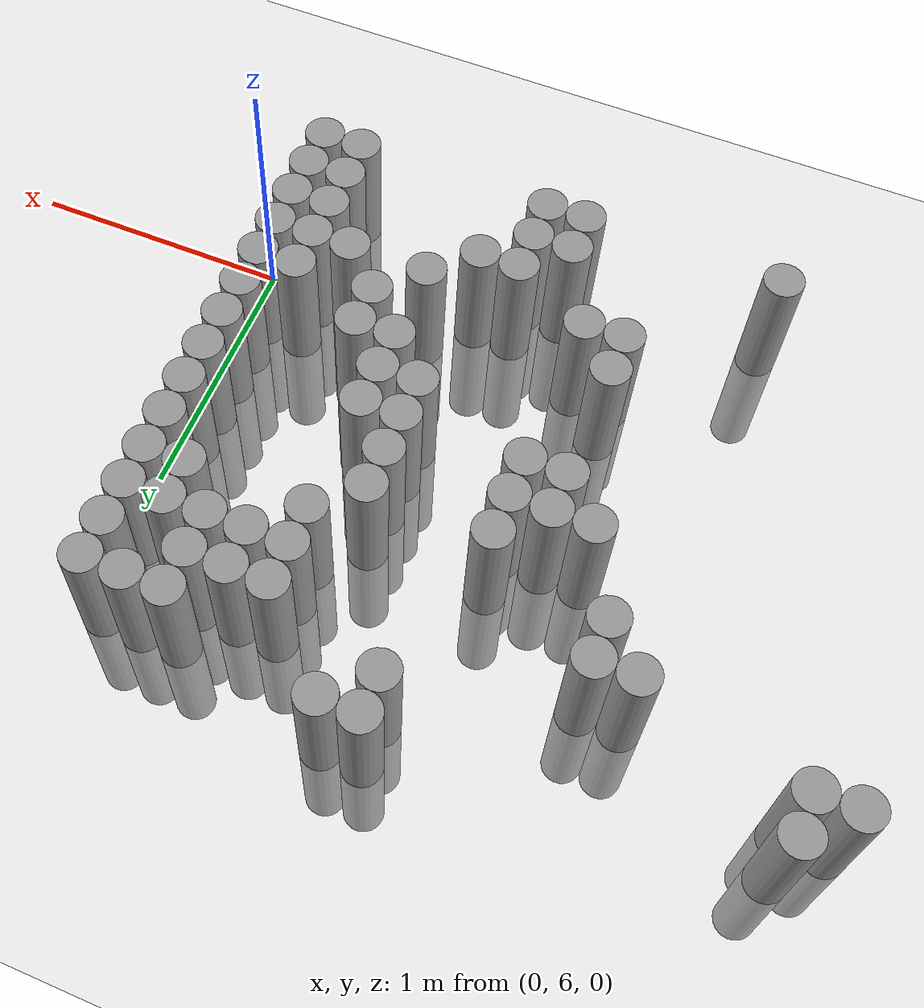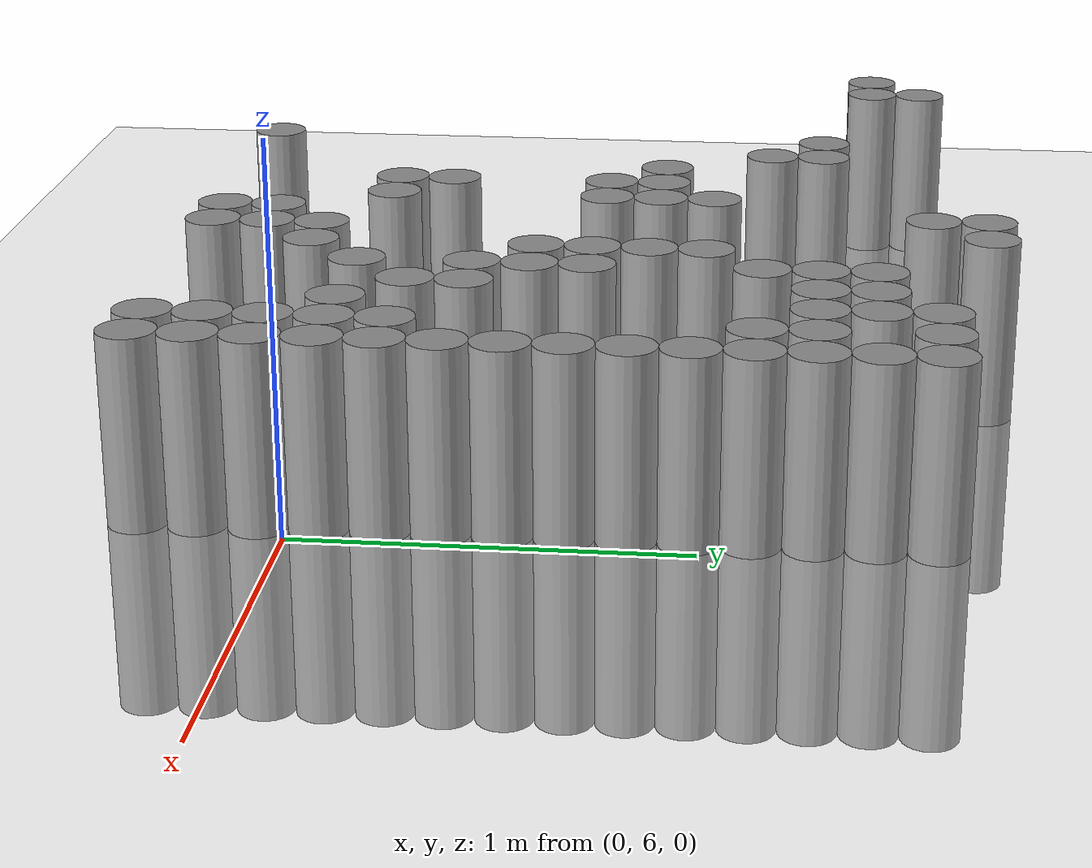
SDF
<sdf version="1.6">
 <world name="default">
  <model name="ground_plane">
   <static>1</static>
   <link name="link">
    <collision name="collision">
     <geometry><plane><normal>0 0 1</normal><size>100 100</size></plane></geometry>
     <surface><friction><ode><mu>100</mu><mu2>50</mu2></ode></friction></surface>
    </collision>
    <visual name="visual">
     <cast_shadows>0</cast_shadows>
     <geometry><plane><normal>0 0 1</normal><size>100 100</size></plane></geometry>
     <material>
      <script><uri>file://media/materials/scripts/gazebo.material</uri><name>Gazebo/Grey</name></script>
     </material>
    </visual>
   </link>
  </model>
  <model name="unit_cylinder_174">
   <pose>-2.625000 7.425000 0.000000 0.000000 0.000000 0.000000</pose>
   <link name="link">
    <inertial>
     <mass>1</mass>
     <inertia><ixx>0.145833</ixx><ixy>0</ixy><ixz>0</ixz><iyy>0.145833</iyy><iyz>0</iyz><izz>0.125</izz></inertia>
    </inertial>
    <collision name="collision">
     <geometry><cylinder><radius>0.075000</radius><length>1</length></cylinder></geometry>
    </collision>
    <visual name="visual">
     <geometry><cylinder><radius>0.075000</radius><length>1</length></cylinder></geometry>
     <material>
      <script><name>Gazebo/Grey</name><uri>file://media/materials/scripts/gazebo.material</uri></script>
     </material>
    </visual>
   </link>
  </model>
  <model name="unit_cylinder_179">
   <pose>-2.475000 7.425000 0.000000 0.000000 0.000000 0.000000</pose>
   <link name="link">
    <inertial>
     <mass>1</mass>
     <inertia><ixx>0.145833</ixx><ixy>0</ixy><ixz>0</ixz><iyy>0.145833</iyy><iyz>0</iyz><izz>0.125</izz></inertia>
    </inertial>
    <collision name="collision">
     <geometry><cylinder><radius>0.075000</radius><length>1</length></cylinder></geometry>
    </collision>
    <visual name="visual">
     <geometry><cylinder><radius>0.075000</radius><length>1</length></cylinder></geometry>
     <material>
      <script><name>Gazebo/Grey</name><uri>file://media/materials/scripts/gazebo.material</uri></script>
     </material>
    </visual>
   </link>
  </model>
  <model name="unit_cylinder_180">
   <pose>-2.475000 7.575000 0.000000 0.000000 0.000000 0.000000</pose>
   <link name="link">
    <inertial>
     <mass>1</mass>
     <inertia><ixx>0.145833</ixx><ixy>0</ixy><ixz>0</ixz><iyy>0.145833</iyy><iyz>0</iyz><izz>0.125</izz></inertia>
    </inertial>
    <collision name="collision">
     <geometry><cylinder><radius>0.075000</radius><length>1</length></cylinder></geometry>
    </collision>
    <visual name="visual">
     <geometry><cylinder><radius>0.075000</radius><length>1</length></cylinder></geometry>
     <material>
      <script><name>Gazebo/Grey</name><uri>file://media/materials/scripts/gazebo.material</uri></script>
     </material>
    </visual>
   </link>
  </model>
  <model name="unit_cylinder_188">
   <pose>-1.875000 5.625000 0.000000 0.000000 0.000000 0.000000</pose>
   <link name="link">
    <inertial>
     <mass>1</mass>
     <inertia><ixx>0.145833</ixx><ixy>0</ixy><ixz>0</ixz><iyy>0.145833</iyy><iyz>0</iyz><izz>0.125</izz></inertia>
    </inertial>
    <collision name="collision">
     <geometry><cylinder><radius>0.075000</radius><length>1</length></cylinder></geometry>
    </collision>
    <visual name="visual">
     <geometry><cylinder><radius>0.075000</radius><length>1</length></cylinder></geometry>
     <material>
      <script><name>Gazebo/Grey</name><uri>file://media/materials/scripts/gazebo.material</uri></script>
     </material>
    </visual>
   </link>
  </model>
  <model name="unit_cylinder_189">
   <pose>-1.875000 7.275000 0.000000 0.000000 0.000000 0.000000</pose>
   <link name="link">
    <inertial>
     <mass>1</mass>
     <inertia><ixx>0.145833</ixx><ixy>0</ixy><ixz>0</ixz><iyy>0.145833</iyy><iyz>0</iyz><izz>0.125</izz></inertia>
    </inertial>
    <collision name="collision">
     <geometry><cylinder><radius>0.075000</radius><length>1</length></cylinder></geometry>
    </collision>
    <visual name="visual">
     <geometry><cylinder><radius>0.075000</radius><length>1</length></cylinder></geometry>
     <material>
      <script><name>Gazebo/Grey</name><uri>file://media/materials/scripts/gazebo.material</uri></script>
     </material>
    </visual>
   </link>
  </model>
  <model name="unit_cylinder_195">
   <pose>-1.725000 7.125000 0.000000 0.000000 0.000000 0.000000</pose>
   <link name="link">
    <inertial>
     <mass>1</mass>
     <inertia><ixx>0.145833</ixx><ixy>0</ixy><ixz>0</ixz><iyy>0.145833</iyy><iyz>0</iyz><izz>0.125</izz></inertia>
    </inertial>
    <collision name="collision">
     <geometry><cylinder><radius>0.075000</radius><length>1</length></cylinder></geometry>
    </collision>
    <visual name="visual">
     <geometry><cylinder><radius>0.075000</radius><length>1</length></cylinder></geometry>
     <material>
      <script><name>Gazebo/Grey</name><uri>file://media/materials/scripts/gazebo.material</uri></script>
     </material>
    </visual>
   </link>
  </model>
  <model name="unit_cylinder_196">
   <pose>-1.725000 7.275000 0.000000 0.000000 0.000000 0.000000</pose>
   <link name="link">
    <inertial>
     <mass>1</mass>
     <inertia><ixx>0.145833</ixx><ixy>0</ixy><ixz>0</ixz><iyy>0.145833</iyy><iyz>0</iyz><izz>0.125</izz></inertia>
    </inertial>
    <collision name="collision">
     <geometry><cylinder><radius>0.075000</radius><length>1</length></cylinder></geometry>
    </collision>
    <visual name="visual">
     <geometry><cylinder><radius>0.075000</radius><length>1</length></cylinder></geometry>
     <material>
      <script><name>Gazebo/Grey</name><uri>file://media/materials/scripts/gazebo.material</uri></script>
     </material>
    </visual>
   </link>
  </model>
  <model name="unit_cylinder_205">
   <pose>-1.575000 6.825000 0.000000 0.000000 0.000000 0.000000</pose>
   <link name="link">
    <inertial>
     <mass>1</mass>
     <inertia><ixx>0.145833</ixx><ixy>0</ixy><ixz>0</ixz><iyy>0.145833</iyy><iyz>0</iyz><izz>0.125</izz></inertia>
    </inertial>
    <collision name="collision">
     <geometry><cylinder><radius>0.075000</radius><length>1</length></cylinder></geometry>
    </collision>
    <visual name="visual">
     <geometry><cylinder><radius>0.075000</radius><length>1</length></cylinder></geometry>
     <material>
      <script><name>Gazebo/Grey</name><uri>file://media/materials/scripts/gazebo.material</uri></script>
     </material>
    </visual>
   </link>
  </model>
  <model name="unit_cylinder_215">
   <pose>-1.425000 6.075000 0.000000 0.000000 0.000000 0.000000</pose>
   <link name="link">
    <inertial>
     <mass>1</mass>
     <inertia><ixx>0.145833</ixx><ixy>0</ixy><ixz>0</ixz><iyy>0.145833</iyy><iyz>0</iyz><izz>0.125</izz></inertia>
    </inertial>
    <collision name="collision">
     <geometry><cylinder><radius>0.075000</radius><length>1</length></cylinder></geometry>
    </collision>
    <visual name="visual">
     <geometry><cylinder><radius>0.075000</radius><length>1</length></cylinder></geometry>
     <material>
      <script><name>Gazebo/Grey</name><uri>file://media/materials/scripts/gazebo.material</uri></script>
     </material>
    </visual>
   </link>
  </model>
  <model name="unit_cylinder_216">
   <pose>-1.425000 6.225000 0.000000 0.000000 0.000000 0.000000</pose>
   <link name="link">
    <inertial>
     <mass>1</mass>
     <inertia><ixx>0.145833</ixx><ixy>0</ixy><ixz>0</ixz><iyy>0.145833</iyy><iyz>0</iyz><izz>0.125</izz></inertia>
    </inertial>
    <collision name="collision">
     <geometry><cylinder><radius>0.075000</radius><length>1</length></cylinder></geometry>
    </collision>
    <visual name="visual">
     <geometry><cylinder><radius>0.075000</radius><length>1</length></cylinder></geometry>
     <material>
      <script><name>Gazebo/Grey</name><uri>file://media/materials/scripts/gazebo.material</uri></script>
     </material>
    </visual>
   </link>
  </model>
  <model name="unit_cylinder_217">
   <pose>-1.425000 6.675000 0.000000 0.000000 0.000000 0.000000</pose>
   <link name="link">
    <inertial>
     <mass>1</mass>
     <inertia><ixx>0.145833</ixx><ixy>0</ixy><ixz>0</ixz><iyy>0.145833</iyy><iyz>0</iyz><izz>0.125</izz></inertia>
    </inertial>
    <collision name="collision">
     <geometry><cylinder><radius>0.075000</radius><length>1</length></cylinder></geometry>
    </collision>
    <visual name="visual">
     <geometry><cylinder><radius>0.075000</radius><length>1</length></cylinder></geometry>
     <material>
      <script><name>Gazebo/Grey</name><uri>file://media/materials/scripts/gazebo.material</uri></script>
     </material>
    </visual>
   </link>
  </model>
  <model name="unit_cylinder_218">
   <pose>-1.425000 6.825000 0.000000 0.000000 0.000000 0.000000</pose>
   <link name="link">
    <inertial>
     <mass>1</mass>
     <inertia><ixx>0.145833</ixx><ixy>0</ixy><ixz>0</ixz><iyy>0.145833</iyy><iyz>0</iyz><izz>0.125</izz></inertia>
    </inertial>
    <collision name="collision">
     <geometry><cylinder><radius>0.075000</radius><length>1</length></cylinder></geometry>
    </collision>
    <visual name="visual">
     <geometry><cylinder><radius>0.075000</radius><length>1</length></cylinder></geometry>
     <material>
      <script><name>Gazebo/Grey</name><uri>file://media/materials/scripts/gazebo.material</uri></script>
     </material>
    </visual>
   </link>
  </model>
  <model name="unit_cylinder_224">
   <pose>-1.275000 6.075000 0.000000 0.000000 0.000000 0.000000</pose>
   <link name="link">
    <inertial>
     <mass>1</mass>
     <inertia><ixx>0.145833</ixx><ixy>0</ixy><ixz>0</ixz><iyy>0.145833</iyy><iyz>0</iyz><izz>0.125</izz></inertia>
    </inertial>
    <collision name="collision">
     <geometry><cylinder><radius>0.075000</radius><length>1</length></cylinder></geometry>
    </collision>
    <visual name="visual">
     <geometry><cylinder><radius>0.075000</radius><length>1</length></cylinder></geometry>
     <material>
      <script><name>Gazebo/Grey</name><uri>file://media/materials/scripts/gazebo.material</uri></script>
     </material>
    </visual>
   </link>
  </model>
  <model name="unit_cylinder_225">
   <pose>-1.275000 6.675000 0.000000 0.000000 0.000000 0.000000</pose>
   <link name="link">
    <inertial>
     <mass>1</mass>
     <inertia><ixx>0.145833</ixx><ixy>0</ixy><ixz>0</ixz><iyy>0.145833</iyy><iyz>0</iyz><izz>0.125</izz></inertia>
    </inertial>
    <collision name="collision">
     <geometry><cylinder><radius>0.075000</radius><length>1</length></cylinder></geometry>
    </collision>
    <visual name="visual">
     <geometry><cylinder><radius>0.075000</radius><length>1</length></cylinder></geometry>
     <material>
      <script><name>Gazebo/Grey</name><uri>file://media/materials/scripts/gazebo.material</uri></script>
     </material>
    </visual>
   </link>
  </model>
  <model name="unit_cylinder_226">
   <pose>-1.275000 6.825000 0.000000 0.000000 0.000000 0.000000</pose>
   <link name="link">
    <inertial>
     <mass>1</mass>
     <inertia><ixx>0.145833</ixx><ixy>0</ixy><ixz>0</ixz><iyy>0.145833</iyy><iyz>0</iyz><izz>0.125</izz></inertia>
    </inertial>
    <collision name="collision">
     <geometry><cylinder><radius>0.075000</radius><length>1</length></cylinder></geometry>
    </collision>
    <visual name="visual">
     <geometry><cylinder><radius>0.075000</radius><length>1</length></cylinder></geometry>
     <material>
      <script><name>Gazebo/Grey</name><uri>file://media/materials/scripts/gazebo.material</uri></script>
     </material>
    </visual>
   </link>
  </model>
  <model name="unit_cylinder_227">
   <pose>-1.275000 6.975000 0.000000 0.000000 0.000000 0.000000</pose>
   <link name="link">
    <inertial>
     <mass>1</mass>
     <inertia><ixx>0.145833</ixx><ixy>0</ixy><ixz>0</ixz><iyy>0.145833</iyy><iyz>0</iyz><izz>0.125</izz></inertia>
    </inertial>
    <collision name="collision">
     <geometry><cylinder><radius>0.075000</radius><length>1</length></cylinder></geometry>
    </collision>
    <visual name="visual">
     <geometry><cylinder><radius>0.075000</radius><length>1</length></cylinder></geometry>
     <material>
      <script><name>Gazebo/Grey</name><uri>file://media/materials/scripts/gazebo.material</uri></script>
     </material>
    </visual>
   </link>
  </model>
  <model name="unit_cylinder_231">
   <pose>-1.125000 5.625000 0.000000 0.000000 0.000000 0.000000</pose>
   <link name="link">
    <inertial>
     <mass>1</mass>
     <inertia><ixx>0.145833</ixx><ixy>0</ixy><ixz>0</ixz><iyy>0.145833</iyy><iyz>0</iyz><izz>0.125</izz></inertia>
    </inertial>
    <collision name="collision">
     <geometry><cylinder><radius>0.075000</radius><length>1</length></cylinder></geometry>
    </collision>
    <visual name="visual">
     <geometry><cylinder><radius>0.075000</radius><length>1</length></cylinder></geometry>
     <material>
      <script><name>Gazebo/Grey</name><uri>file://media/materials/scripts/gazebo.material</uri></script>
     </material>
    </visual>
   </link>
  </model>
  <model name="unit_cylinder_232">
   <pose>-1.125000 5.775000 0.000000 0.000000 0.000000 0.000000</pose>
   <link name="link">
    <inertial>
     <mass>1</mass>
     <inertia><ixx>0.145833</ixx><ixy>0</ixy><ixz>0</ixz><iyy>0.145833</iyy><iyz>0</iyz><izz>0.125</izz></inertia>
    </inertial>
    <collision name="collision">
     <geometry><cylinder><radius>0.075000</radius><length>1</length></cylinder></geometry>
    </collision>
    <visual name="visual">
     <geometry><cylinder><radius>0.075000</radius><length>1</length></cylinder></geometry>
     <material>
      <script><name>Gazebo/Grey</name><uri>file://media/materials/scripts/gazebo.material</uri></script>
     </material>
    </visual>
   </link>
  </model>
  <model name="unit_cylinder_233">
   <pose>-1.125000 7.575000 0.000000 0.000000 0.000000 0.000000</pose>
   <link name="link">
    <inertial>
     <mass>1</mass>
     <inertia><ixx>0.145833</ixx><ixy>0</ixy><ixz>0</ixz><iyy>0.145833</iyy><iyz>0</iyz><izz>0.125</izz></inertia>
    </inertial>
    <collision name="collision">
     <geometry><cylinder><radius>0.075000</radius><length>1</length></cylinder></geometry>
    </collision>
    <visual name="visual">
     <geometry><cylinder><radius>0.075000</radius><length>1</length></cylinder></geometry>
     <material>
      <script><name>Gazebo/Grey</name><uri>file://media/materials/scripts/gazebo.material</uri></script>
     </material>
    </visual>
   </link>
  </model>
  <model name="unit_cylinder_234">
   <pose>-1.125000 7.725000 0.000000 0.000000 0.000000 0.000000</pose>
   <link name="link">
    <inertial>
     <mass>1</mass>
     <inertia><ixx>0.145833</ixx><ixy>0</ixy><ixz>0</ixz><iyy>0.145833</iyy><iyz>0</iyz><izz>0.125</izz></inertia>
    </inertial>
    <collision name="collision">
     <geometry><cylinder><radius>0.075000</radius><length>1</length></cylinder></geometry>
    </collision>
    <visual name="visual">
     <geometry><cylinder><radius>0.075000</radius><length>1</length></cylinder></geometry>
     <material>
      <script><name>Gazebo/Grey</name><uri>file://media/materials/scripts/gazebo.material</uri></script>
     </material>
    </visual>
   </link>
  </model>
  <model name="unit_cylinder_240">
   <pose>-0.975000 5.625000 0.000000 0.000000 0.000000 0.000000</pose>
   <link name="link">
    <inertial>
     <mass>1</mass>
     <inertia><ixx>0.145833</ixx><ixy>0</ixy><ixz>0</ixz><iyy>0.145833</iyy><iyz>0</iyz><izz>0.125</izz></inertia>
    </inertial>
    <collision name="collision">
     <geometry><cylinder><radius>0.075000</radius><length>1</length></cylinder></geometry>
    </collision>
    <visual name="visual">
     <geometry><cylinder><radius>0.075000</radius><length>1</length></cylinder></geometry>
     <material>
      <script><name>Gazebo/Grey</name><uri>file://media/materials/scripts/gazebo.material</uri></script>
     </material>
    </visual>
   </link>
  </model>
  <model name="unit_cylinder_241">
   <pose>-0.975000 5.775000 0.000000 0.000000 0.000000 0.000000</pose>
   <link name="link">
    <inertial>
     <mass>1</mass>
     <inertia><ixx>0.145833</ixx><ixy>0</ixy><ixz>0</ixz><iyy>0.145833</iyy><iyz>0</iyz><izz>0.125</izz></inertia>
    </inertial>
    <collision name="collision">
     <geometry><cylinder><radius>0.075000</radius><length>1</length></cylinder></geometry>
    </collision>
    <visual name="visual">
     <geometry><cylinder><radius>0.075000</radius><length>1</length></cylinder></geometry>
     <material>
      <script><name>Gazebo/Grey</name><uri>file://media/materials/scripts/gazebo.material</uri></script>
     </material>
    </visual>
   </link>
  </model>
  <model name="unit_cylinder_242">
   <pose>-0.975000 5.925000 0.000000 0.000000 0.000000 0.000000</pose>
   <link name="link">
    <inertial>
     <mass>1</mass>
     <inertia><ixx>0.145833</ixx><ixy>0</ixy><ixz>0</ixz><iyy>0.145833</iyy><iyz>0</iyz><izz>0.125</izz></inertia>
    </inertial>
    <collision name="collision">
     <geometry><cylinder><radius>0.075000</radius><length>1</length></cylinder></geometry>
    </collision>
    <visual name="visual">
     <geometry><cylinder><radius>0.075000</radius><length>1</length></cylinder></geometry>
     <material>
      <script><name>Gazebo/Grey</name><uri>file://media/materials/scripts/gazebo.material</uri></script>
     </material>
    </visual>
   </link>
  </model>
  <model name="unit_cylinder_243">
   <pose>-0.975000 7.725000 0.000000 0.000000 0.000000 0.000000</pose>
   <link name="link">
    <inertial>
     <mass>1</mass>
     <inertia><ixx>0.145833</ixx><ixy>0</ixy><ixz>0</ixz><iyy>0.145833</iyy><iyz>0</iyz><izz>0.125</izz></inertia>
    </inertial>
    <collision name="collision">
     <geometry><cylinder><radius>0.075000</radius><length>1</length></cylinder></geometry>
    </collision>
    <visual name="visual">
     <geometry><cylinder><radius>0.075000</radius><length>1</length></cylinder></geometry>
     <material>
      <script><name>Gazebo/Grey</name><uri>file://media/materials/scripts/gazebo.material</uri></script>
     </material>
    </visual>
   </link>
  </model>
  <model name="unit_cylinder_248">
   <pose>-0.825000 5.925000 0.000000 0.000000 0.000000 0.000000</pose>
   <link name="link">
    <inertial>
     <mass>1</mass>
     <inertia><ixx>0.145833</ixx><ixy>0</ixy><ixz>0</ixz><iyy>0.145833</iyy><iyz>0</iyz><izz>0.125</izz></inertia>
    </inertial>
    <collision name="collision">
     <geometry><cylinder><radius>0.075000</radius><length>1</length></cylinder></geometry>
    </collision>
    <visual name="visual">
     <geometry><cylinder><radius>0.075000</radius><length>1</length></cylinder></geometry>
     <material>
      <script><name>Gazebo/Grey</name><uri>file://media/materials/scripts/gazebo.material</uri></script>
     </material>
    </visual>
   </link>
  </model>
  <model name="unit_cylinder_249">
   <pose>-0.825000 6.525000 0.000000 0.000000 0.000000 0.000000</pose>
   <link name="link">
    <inertial>
     <mass>1</mass>
     <inertia><ixx>0.145833</ixx><ixy>0</ixy><ixz>0</ixz><iyy>0.145833</iyy><iyz>0</iyz><izz>0.125</izz></inertia>
    </inertial>
    <collision name="collision">
     <geometry><cylinder><radius>0.075000</radius><length>1</length></cylinder></geometry>
    </collision>
    <visual name="visual">
     <geometry><cylinder><radius>0.075000</radius><length>1</length></cylinder></geometry>
     <material>
      <script><name>Gazebo/Grey</name><uri>file://media/materials/scripts/gazebo.material</uri></script>
     </material>
    </visual>
   </link>
  </model>
  <model name="unit_cylinder_250">
   <pose>-0.825000 6.675000 0.000000 0.000000 0.000000 0.000000</pose>
   <link name="link">
    <inertial>
     <mass>1</mass>
     <inertia><ixx>0.145833</ixx><ixy>0</ixy><ixz>0</ixz><iyy>0.145833</iyy><iyz>0</iyz><izz>0.125</izz></inertia>
    </inertial>
    <collision name="collision">
     <geometry><cylinder><radius>0.075000</radius><length>1</length></cylinder></geometry>
    </collision>
    <visual name="visual">
     <geometry><cylinder><radius>0.075000</radius><length>1</length></cylinder></geometry>
     <material>
      <script><name>Gazebo/Grey</name><uri>file://media/materials/scripts/gazebo.material</uri></script>
     </material>
    </visual>
   </link>
  </model>
  <model name="unit_cylinder_251">
   <pose>-0.825000 6.825000 0.000000 0.000000 0.000000 0.000000</pose>
   <link name="link">
    <inertial>
     <mass>1</mass>
     <inertia><ixx>0.145833</ixx><ixy>0</ixy><ixz>0</ixz><iyy>0.145833</iyy><iyz>0</iyz><izz>0.125</izz></inertia>
    </inertial>
    <collision name="collision">
     <geometry><cylinder><radius>0.075000</radius><length>1</length></cylinder></geometry>
    </collision>
    <visual name="visual">
     <geometry><cylinder><radius>0.075000</radius><length>1</length></cylinder></geometry>
     <material>
      <script><name>Gazebo/Grey</name><uri>file://media/materials/scripts/gazebo.material</uri></script>
     </material>
    </visual>
   </link>
  </model>
  <model name="unit_cylinder_252">
   <pose>-0.825000 6.975000 0.000000 0.000000 0.000000 0.000000</pose>
   <link name="link">
    <inertial>
     <mass>1</mass>
     <inertia><ixx>0.145833</ixx><ixy>0</ixy><ixz>0</ixz><iyy>0.145833</iyy><iyz>0</iyz><izz>0.125</izz></inertia>
    </inertial>
    <collision name="collision">
     <geometry><cylinder><radius>0.075000</radius><length>1</length></cylinder></geometry>
    </collision>
    <visual name="visual">
     <geometry><cylinder><radius>0.075000</radius><length>1</length></cylinder></geometry>
     <material>
      <script><name>Gazebo/Grey</name><uri>file://media/materials/scripts/gazebo.material</uri></script>
     </material>
    </visual>
   </link>
  </model>
  <model name="unit_cylinder_258">
   <pose>-0.675000 6.075000 0.000000 0.000000 0.000000 0.000000</pose>
   <link name="link">
    <inertial>
     <mass>1</mass>
     <inertia><ixx>0.145833</ixx><ixy>0</ixy><ixz>0</ixz><iyy>0.145833</iyy><iyz>0</iyz><izz>0.125</izz></inertia>
    </inertial>
    <collision name="collision">
     <geometry><cylinder><radius>0.075000</radius><length>1</length></cylinder></geometry>
    </collision>
    <visual name="visual">
     <geometry><cylinder><radius>0.075000</radius><length>1</length></cylinder></geometry>
     <material>
      <script><name>Gazebo/Grey</name><uri>file://media/materials/scripts/gazebo.material</uri></script>
     </material>
    </visual>
   </link>
  </model>
  <model name="unit_cylinder_259">
   <pose>-0.675000 6.375000 0.000000 0.000000 0.000000 0.000000</pose>
   <link name="link">
    <inertial>
     <mass>1</mass>
     <inertia><ixx>0.145833</ixx><ixy>0</ixy><ixz>0</ixz><iyy>0.145833</iyy><iyz>0</iyz><izz>0.125</izz></inertia>
    </inertial>
    <collision name="collision">
     <geometry><cylinder><radius>0.075000</radius><length>1</length></cylinder></geometry>
    </collision>
    <visual name="visual">
     <geometry><cylinder><radius>0.075000</radius><length>1</length></cylinder></geometry>
     <material>
      <script><name>Gazebo/Grey</name><uri>file://media/materials/scripts/gazebo.material</uri></script>
     </material>
    </visual>
   </link>
  </model>
  <model name="unit_cylinder_260">
   <pose>-0.675000 6.525000 0.000000 0.000000 0.000000 0.000000</pose>
   <link name="link">
    <inertial>
     <mass>1</mass>
     <inertia><ixx>0.145833</ixx><ixy>0</ixy><ixz>0</ixz><iyy>0.145833</iyy><iyz>0</iyz><izz>0.125</izz></inertia>
    </inertial>
    <collision name="collision">
     <geometry><cylinder><radius>0.075000</radius><length>1</length></cylinder></geometry>
    </collision>
    <visual name="visual">
     <geometry><cylinder><radius>0.075000</radius><length>1</length></cylinder></geometry>
     <material>
      <script><name>Gazebo/Grey</name><uri>file://media/materials/scripts/gazebo.material</uri></script>
     </material>
    </visual>
   </link>
  </model>
  <model name="unit_cylinder_261">
   <pose>-0.675000 6.675000 0.000000 0.000000 0.000000 0.000000</pose>
   <link name="link">
    <inertial>
     <mass>1</mass>
     <inertia><ixx>0.145833</ixx><ixy>0</ixy><ixz>0</ixz><iyy>0.145833</iyy><iyz>0</iyz><izz>0.125</izz></inertia>
    </inertial>
    <collision name="collision">
     <geometry><cylinder><radius>0.075000</radius><length>1</length></cylinder></geometry>
    </collision>
    <visual name="visual">
     <geometry><cylinder><radius>0.075000</radius><length>1</length></cylinder></geometry>
     <material>
      <script><name>Gazebo/Grey</name><uri>file://media/materials/scripts/gazebo.material</uri></script>
     </material>
    </visual>
   </link>
  </model>
  <model name="unit_cylinder_262">
   <pose>-0.675000 7.125000 0.000000 0.000000 0.000000 0.000000</pose>
   <link name="link">
    <inertial>
     <mass>1</mass>
     <inertia><ixx>0.145833</ixx><ixy>0</ixy><ixz>0</ixz><iyy>0.145833</iyy><iyz>0</iyz><izz>0.125</izz></inertia>
    </inertial>
    <collision name="collision">
     <geometry><cylinder><radius>0.075000</radius><length>1</length></cylinder></geometry>
    </collision>
    <visual name="visual">
     <geometry><cylinder><radius>0.075000</radius><length>1</length></cylinder></geometry>
     <material>
      <script><name>Gazebo/Grey</name><uri>file://media/materials/scripts/gazebo.material</uri></script>
     </material>
    </visual>
   </link>
  </model>
  <model name="unit_cylinder_263">
   <pose>-0.675000 7.275000 0.000000 0.000000 0.000000 0.000000</pose>
   <link name="link">
    <inertial>
     <mass>1</mass>
     <inertia><ixx>0.145833</ixx><ixy>0</ixy><ixz>0</ixz><iyy>0.145833</iyy><iyz>0</iyz><izz>0.125</izz></inertia>
    </inertial>
    <collision name="collision">
     <geometry><cylinder><radius>0.075000</radius><length>1</length></cylinder></geometry>
    </collision>
    <visual name="visual">
     <geometry><cylinder><radius>0.075000</radius><length>1</length></cylinder></geometry>
     <material>
      <script><name>Gazebo/Grey</name><uri>file://media/materials/scripts/gazebo.material</uri></script>
     </material>
    </visual>
   </link>
  </model>
  <model name="unit_cylinder_264">
   <pose>-0.675000 7.425000 0.000000 0.000000 0.000000 0.000000</pose>
   <link name="link">
    <inertial>
     <mass>1</mass>
     <inertia><ixx>0.145833</ixx><ixy>0</ixy><ixz>0</ixz><iyy>0.145833</iyy><iyz>0</iyz><izz>0.125</izz></inertia>
    </inertial>
    <collision name="collision">
     <geometry><cylinder><radius>0.075000</radius><length>1</length></cylinder></geometry>
    </collision>
    <visual name="visual">
     <geometry><cylinder><radius>0.075000</radius><length>1</length></cylinder></geometry>
     <material>
      <script><name>Gazebo/Grey</name><uri>file://media/materials/scripts/gazebo.material</uri></script>
     </material>
    </visual>
   </link>
  </model>
  <model name="unit_cylinder_270">
   <pose>-0.525000 6.225000 0.000000 0.000000 0.000000 0.000000</pose>
   <link name="link">
    <inertial>
     <mass>1</mass>
     <inertia><ixx>0.145833</ixx><ixy>0</ixy><ixz>0</ixz><iyy>0.145833</iyy><iyz>0</iyz><izz>0.125</izz></inertia>
    </inertial>
    <collision name="collision">
     <geometry><cylinder><radius>0.075000</radius><length>1</length></cylinder></geometry>
    </collision>
    <visual name="visual">
     <geometry><cylinder><radius>0.075000</radius><length>1</length></cylinder></geometry>
     <material>
      <script><name>Gazebo/Grey</name><uri>file://media/materials/scripts/gazebo.material</uri></script>
     </material>
    </visual>
   </link>
  </model>
  <model name="unit_cylinder_271">
   <pose>-0.525000 6.375000 0.000000 0.000000 0.000000 0.000000</pose>
   <link name="link">
    <inertial>
     <mass>1</mass>
     <inertia><ixx>0.145833</ixx><ixy>0</ixy><ixz>0</ixz><iyy>0.145833</iyy><iyz>0</iyz><izz>0.125</izz></inertia>
    </inertial>
    <collision name="collision">
     <geometry><cylinder><radius>0.075000</radius><length>1</length></cylinder></geometry>
    </collision>
    <visual name="visual">
     <geometry><cylinder><radius>0.075000</radius><length>1</length></cylinder></geometry>
     <material>
      <script><name>Gazebo/Grey</name><uri>file://media/materials/scripts/gazebo.material</uri></script>
     </material>
    </visual>
   </link>
  </model>
  <model name="unit_cylinder_272">
   <pose>-0.525000 7.275000 0.000000 0.000000 0.000000 0.000000</pose>
   <link name="link">
    <inertial>
     <mass>1</mass>
     <inertia><ixx>0.145833</ixx><ixy>0</ixy><ixz>0</ixz><iyy>0.145833</iyy><iyz>0</iyz><izz>0.125</izz></inertia>
    </inertial>
    <collision name="collision">
     <geometry><cylinder><radius>0.075000</radius><length>1</length></cylinder></geometry>
    </collision>
    <visual name="visual">
     <geometry><cylinder><radius>0.075000</radius><length>1</length></cylinder></geometry>
     <material>
      <script><name>Gazebo/Grey</name><uri>file://media/materials/scripts/gazebo.material</uri></script>
     </material>
    </visual>
   </link>
  </model>
  <model name="unit_cylinder_273">
   <pose>-0.525000 7.425000 0.000000 0.000000 0.000000 0.000000</pose>
   <link name="link">
    <inertial>
     <mass>1</mass>
     <inertia><ixx>0.145833</ixx><ixy>0</ixy><ixz>0</ixz><iyy>0.145833</iyy><iyz>0</iyz><izz>0.125</izz></inertia>
    </inertial>
    <collision name="collision">
     <geometry><cylinder><radius>0.075000</radius><length>1</length></cylinder></geometry>
    </collision>
    <visual name="visual">
     <geometry><cylinder><radius>0.075000</radius><length>1</length></cylinder></geometry>
     <material>
      <script><name>Gazebo/Grey</name><uri>file://media/materials/scripts/gazebo.material</uri></script>
     </material>
    </visual>
   </link>
  </model>
  <model name="unit_cylinder_278">
   <pose>-0.375000 6.075000 0.000000 0.000000 0.000000 0.000000</pose>
   <link name="link">
    <inertial>
     <mass>1</mass>
     <inertia><ixx>0.145833</ixx><ixy>0</ixy><ixz>0</ixz><iyy>0.145833</iyy><iyz>0</iyz><izz>0.125</izz></inertia>
    </inertial>
    <collision name="collision">
     <geometry><cylinder><radius>0.075000</radius><length>1</length></cylinder></geometry>
    </collision>
    <visual name="visual">
     <geometry><cylinder><radius>0.075000</radius><length>1</length></cylinder></geometry>
     <material>
      <script><name>Gazebo/Grey</name><uri>file://media/materials/scripts/gazebo.material</uri></script>
     </material>
    </visual>
   </link>
  </model>
  <model name="unit_cylinder_279">
   <pose>-0.375000 7.275000 0.000000 0.000000 0.000000 0.000000</pose>
   <link name="link">
    <inertial>
     <mass>1</mass>
     <inertia><ixx>0.145833</ixx><ixy>0</ixy><ixz>0</ixz><iyy>0.145833</iyy><iyz>0</iyz><izz>0.125</izz></inertia>
    </inertial>
    <collision name="collision">
     <geometry><cylinder><radius>0.075000</radius><length>1</length></cylinder></geometry>
    </collision>
    <visual name="visual">
     <geometry><cylinder><radius>0.075000</radius><length>1</length></cylinder></geometry>
     <material>
      <script><name>Gazebo/Grey</name><uri>file://media/materials/scripts/gazebo.material</uri></script>
     </material>
    </visual>
   </link>
  </model>
  <model name="unit_cylinder_280">
   <pose>-0.375000 7.425000 0.000000 0.000000 0.000000 0.000000</pose>
   <link name="link">
    <inertial>
     <mass>1</mass>
     <inertia><ixx>0.145833</ixx><ixy>0</ixy><ixz>0</ixz><iyy>0.145833</iyy><iyz>0</iyz><izz>0.125</izz></inertia>
    </inertial>
    <collision name="collision">
     <geometry><cylinder><radius>0.075000</radius><length>1</length></cylinder></geometry>
    </collision>
    <visual name="visual">
     <geometry><cylinder><radius>0.075000</radius><length>1</length></cylinder></geometry>
     <material>
      <script><name>Gazebo/Grey</name><uri>file://media/materials/scripts/gazebo.material</uri></script>
     </material>
    </visual>
   </link>
  </model>
  <model name="unit_cylinder_281">
   <pose>-0.375000 7.575000 0.000000 0.000000 0.000000 0.000000</pose>
   <link name="link">
    <inertial>
     <mass>1</mass>
     <inertia><ixx>0.145833</ixx><ixy>0</ixy><ixz>0</ixz><iyy>0.145833</iyy><iyz>0</iyz><izz>0.125</izz></inertia>
    </inertial>
    <collision name="collision">
     <geometry><cylinder><radius>0.075000</radius><length>1</length></cylinder></geometry>
    </collision>
    <visual name="visual">
     <geometry><cylinder><radius>0.075000</radius><length>1</length></cylinder></geometry>
     <material>
      <script><name>Gazebo/Grey</name><uri>file://media/materials/scripts/gazebo.material</uri></script>
     </material>
    </visual>
   </link>
  </model>
  <model name="unit_cylinder_287">
   <pose>-0.225000 5.625000 0.000000 0.000000 0.000000 0.000000</pose>
   <link name="link">
    <inertial>
     <mass>1</mass>
     <inertia><ixx>0.145833</ixx><ixy>0</ixy><ixz>0</ixz><iyy>0.145833</iyy><iyz>0</iyz><izz>0.125</izz></inertia>
    </inertial>
    <collision name="collision">
     <geometry><cylinder><radius>0.075000</radius><length>1</length></cylinder></geometry>
    </collision>
    <visual name="visual">
     <geometry><cylinder><radius>0.075000</radius><length>1</length></cylinder></geometry>
     <material>
      <script><name>Gazebo/Grey</name><uri>file://media/materials/scripts/gazebo.material</uri></script>
     </material>
    </visual>
   </link>
  </model>
  <model name="unit_cylinder_288">
   <pose>-0.225000 5.775000 0.000000 0.000000 0.000000 0.000000</pose>
   <link name="link">
    <inertial>
     <mass>1</mass>
     <inertia><ixx>0.145833</ixx><ixy>0</ixy><ixz>0</ixz><iyy>0.145833</iyy><iyz>0</iyz><izz>0.125</izz></inertia>
    </inertial>
    <collision name="collision">
     <geometry><cylinder><radius>0.075000</radius><length>1</length></cylinder></geometry>
    </collision>
    <visual name="visual">
     <geometry><cylinder><radius>0.075000</radius><length>1</length></cylinder></geometry>
     <material>
      <script><name>Gazebo/Grey</name><uri>file://media/materials/scripts/gazebo.material</uri></script>
     </material>
    </visual>
   </link>
  </model>
  <model name="unit_cylinder_289">
   <pose>-0.225000 5.925000 0.000000 0.000000 0.000000 0.000000</pose>
   <link name="link">
    <inertial>
     <mass>1</mass>
     <inertia><ixx>0.145833</ixx><ixy>0</ixy><ixz>0</ixz><iyy>0.145833</iyy><iyz>0</iyz><izz>0.125</izz></inertia>
    </inertial>
    <collision name="collision">
     <geometry><cylinder><radius>0.075000</radius><length>1</length></cylinder></geometry>
    </collision>
    <visual name="visual">
     <geometry><cylinder><radius>0.075000</radius><length>1</length></cylinder></geometry>
     <material>
      <script><name>Gazebo/Grey</name><uri>file://media/materials/scripts/gazebo.material</uri></script>
     </material>
    </visual>
   </link>
  </model>
  <model name="unit_cylinder_290">
   <pose>-0.225000 6.075000 0.000000 0.000000 0.000000 0.000000</pose>
   <link name="link">
    <inertial>
     <mass>1</mass>
     <inertia><ixx>0.145833</ixx><ixy>0</ixy><ixz>0</ixz><iyy>0.145833</iyy><iyz>0</iyz><izz>0.125</izz></inertia>
    </inertial>
    <collision name="collision">
     <geometry><cylinder><radius>0.075000</radius><length>1</length></cylinder></geometry>
    </collision>
    <visual name="visual">
     <geometry><cylinder><radius>0.075000</radius><length>1</length></cylinder></geometry>
     <material>
      <script><name>Gazebo/Grey</name><uri>file://media/materials/scripts/gazebo.material</uri></script>
     </material>
    </visual>
   </link>
  </model>
  <model name="unit_cylinder_291">
   <pose>-0.225000 6.225000 0.000000 0.000000 0.000000 0.000000</pose>
   <link name="link">
    <inertial>
     <mass>1</mass>
     <inertia><ixx>0.145833</ixx><ixy>0</ixy><ixz>0</ixz><iyy>0.145833</iyy><iyz>0</iyz><izz>0.125</izz></inertia>
    </inertial>
    <collision name="collision">
     <geometry><cylinder><radius>0.075000</radius><length>1</length></cylinder></geometry>
    </collision>
    <visual name="visual">
     <geometry><cylinder><radius>0.075000</radius><length>1</length></cylinder></geometry>
     <material>
      <script><name>Gazebo/Grey</name><uri>file://media/materials/scripts/gazebo.material</uri></script>
     </material>
    </visual>
   </link>
  </model>
  <model name="unit_cylinder_292">
   <pose>-0.225000 7.125000 0.000000 0.000000 0.000000 0.000000</pose>
   <link name="link">
    <inertial>
     <mass>1</mass>
     <inertia><ixx>0.145833</ixx><ixy>0</ixy><ixz>0</ixz><iyy>0.145833</iyy><iyz>0</iyz><izz>0.125</izz></inertia>
    </inertial>
    <collision name="collision">
     <geometry><cylinder><radius>0.075000</radius><length>1</length></cylinder></geometry>
    </collision>
    <visual name="visual">
     <geometry><cylinder><radius>0.075000</radius><length>1</length></cylinder></geometry>
     <material>
      <script><name>Gazebo/Grey</name><uri>file://media/materials/scripts/gazebo.material</uri></script>
     </material>
    </visual>
   </link>
  </model>
  <model name="unit_cylinder_293">
   <pose>-0.225000 7.275000 0.000000 0.000000 0.000000 0.000000</pose>
   <link name="link">
    <inertial>
     <mass>1</mass>
     <inertia><ixx>0.145833</ixx><ixy>0</ixy><ixz>0</ixz><iyy>0.145833</iyy><iyz>0</iyz><izz>0.125</izz></inertia>
    </inertial>
    <collision name="collision">
     <geometry><cylinder><radius>0.075000</radius><length>1</length></cylinder></geometry>
    </collision>
    <visual name="visual">
     <geometry><cylinder><radius>0.075000</radius><length>1</length></cylinder></geometry>
     <material>
      <script><name>Gazebo/Grey</name><uri>file://media/materials/scripts/gazebo.material</uri></script>
     </material>
    </visual>
   </link>
  </model>
  <model name="unit_cylinder_294">
   <pose>-0.225000 7.575000 0.000000 0.000000 0.000000 0.000000</pose>
   <link name="link">
    <inertial>
     <mass>1</mass>
     <inertia><ixx>0.145833</ixx><ixy>0</ixy><ixz>0</ixz><iyy>0.145833</iyy><iyz>0</iyz><izz>0.125</izz></inertia>
    </inertial>
    <collision name="collision">
     <geometry><cylinder><radius>0.075000</radius><length>1</length></cylinder></geometry>
    </collision>
    <visual name="visual">
     <geometry><cylinder><radius>0.075000</radius><length>1</length></cylinder></geometry>
     <material>
      <script><name>Gazebo/Grey</name><uri>file://media/materials/scripts/gazebo.material</uri></script>
     </material>
    </visual>
   </link>
  </model>
  <model name="unit_cylinder_303">
   <pose>-0.075000 5.625000 0.000000 0.000000 0.000000 0.000000</pose>
   <link name="link">
    <inertial>
     <mass>1</mass>
     <inertia><ixx>0.145833</ixx><ixy>0</ixy><ixz>0</ixz><iyy>0.145833</iyy><iyz>0</iyz><izz>0.125</izz></inertia>
    </inertial>
    <collision name="collision">
     <geometry><cylinder><radius>0.075000</radius><length>1</length></cylinder></geometry>
    </collision>
    <visual name="visual">
     <geometry><cylinder><radius>0.075000</radius><length>1</length></cylinder></geometry>
     <material>
      <script><name>Gazebo/Grey</name><uri>file://media/materials/scripts/gazebo.material</uri></script>
     </material>
    </visual>
   </link>
  </model>
  <model name="unit_cylinder_304">
   <pose>-0.075000 5.775000 0.000000 0.000000 0.000000 0.000000</pose>
   <link name="link">
    <inertial>
     <mass>1</mass>
     <inertia><ixx>0.145833</ixx><ixy>0</ixy><ixz>0</ixz><iyy>0.145833</iyy><iyz>0</iyz><izz>0.125</izz></inertia>
    </inertial>
    <collision name="collision">
     <geometry><cylinder><radius>0.075000</radius><length>1</length></cylinder></geometry>
    </collision>
    <visual name="visual">
     <geometry><cylinder><radius>0.075000</radius><length>1</length></cylinder></geometry>
     <material>
      <script><name>Gazebo/Grey</name><uri>file://media/materials/scripts/gazebo.material</uri></script>
     </material>
    </visual>
   </link>
  </model>
  <model name="unit_cylinder_305">
   <pose>-0.075000 5.925000 0.000000 0.000000 0.000000 0.000000</pose>
   <link name="link">
    <inertial>
     <mass>1</mass>
     <inertia><ixx>0.145833</ixx><ixy>0</ixy><ixz>0</ixz><iyy>0.145833</iyy><iyz>0</iyz><izz>0.125</izz></inertia>
    </inertial>
    <collision name="collision">
     <geometry><cylinder><radius>0.075000</radius><length>1</length></cylinder></geometry>
    </collision>
    <visual name="visual">
     <geometry><cylinder><radius>0.075000</radius><length>1</length></cylinder></geometry>
     <material>
      <script><name>Gazebo/Grey</name><uri>file://media/materials/scripts/gazebo.material</uri></script>
     </material>
    </visual>
   </link>
  </model>
  <model name="unit_cylinder_306">
   <pose>-0.075000 6.075000 0.000000 0.000000 0.000000 0.000000</pose>
   <link name="link">
    <inertial>
     <mass>1</mass>
     <inertia><ixx>0.145833</ixx><ixy>0</ixy><ixz>0</ixz><iyy>0.145833</iyy><iyz>0</iyz><izz>0.125</izz></inertia>
    </inertial>
    <collision name="collision">
     <geometry><cylinder><radius>0.075000</radius><length>1</length></cylinder></geometry>
    </collision>
    <visual name="visual">
     <geometry><cylinder><radius>0.075000</radius><length>1</length></cylinder></geometry>
     <material>
      <script><name>Gazebo/Grey</name><uri>file://media/materials/scripts/gazebo.material</uri></script>
     </material>
    </visual>
   </link>
  </model>
  <model name="unit_cylinder_307">
   <pose>-0.075000 6.225000 0.000000 0.000000 0.000000 0.000000</pose>
   <link name="link">
    <inertial>
     <mass>1</mass>
     <inertia><ixx>0.145833</ixx><ixy>0</ixy><ixz>0</ixz><iyy>0.145833</iyy><iyz>0</iyz><izz>0.125</izz></inertia>
    </inertial>
    <collision name="collision">
     <geometry><cylinder><radius>0.075000</radius><length>1</length></cylinder></geometry>
    </collision>
    <visual name="visual">
     <geometry><cylinder><radius>0.075000</radius><length>1</length></cylinder></geometry>
     <material>
      <script><name>Gazebo/Grey</name><uri>file://media/materials/scripts/gazebo.material</uri></script>
     </material>
    </visual>
   </link>
  </model>
  <model name="unit_cylinder_308">
   <pose>-0.075000 6.375000 0.000000 0.000000 0.000000 0.000000</pose>
   <link name="link">
    <inertial>
     <mass>1</mass>
     <inertia><ixx>0.145833</ixx><ixy>0</ixy><ixz>0</ixz><iyy>0.145833</iyy><iyz>0</iyz><izz>0.125</izz></inertia>
    </inertial>
    <collision name="collision">
     <geometry><cylinder><radius>0.075000</radius><length>1</length></cylinder></geometry>
    </collision>
    <visual name="visual">
     <geometry><cylinder><radius>0.075000</radius><length>1</length></cylinder></geometry>
     <material>
      <script><name>Gazebo/Grey</name><uri>file://media/materials/scripts/gazebo.material</uri></script>
     </material>
    </visual>
   </link>
  </model>
  <model name="unit_cylinder_309">
   <pose>-0.075000 6.525000 0.000000 0.000000 0.000000 0.000000</pose>
   <link name="link">
    <inertial>
     <mass>1</mass>
     <inertia><ixx>0.145833</ixx><ixy>0</ixy><ixz>0</ixz><iyy>0.145833</iyy><iyz>0</iyz><izz>0.125</izz></inertia>
    </inertial>
    <collision name="collision">
     <geometry><cylinder><radius>0.075000</radius><length>1</length></cylinder></geometry>
    </collision>
    <visual name="visual">
     <geometry><cylinder><radius>0.075000</radius><length>1</length></cylinder></geometry>
     <material>
      <script><name>Gazebo/Grey</name><uri>file://media/materials/scripts/gazebo.material</uri></script>
     </material>
    </visual>
   </link>
  </model>
  <model name="unit_cylinder_310">
   <pose>-0.075000 6.675000 0.000000 0.000000 0.000000 0.000000</pose>
   <link name="link">
    <inertial>
     <mass>1</mass>
     <inertia><ixx>0.145833</ixx><ixy>0</ixy><ixz>0</ixz><iyy>0.145833</iyy><iyz>0</iyz><izz>0.125</izz></inertia>
    </inertial>
    <collision name="collision">
     <geometry><cylinder><radius>0.075000</radius><length>1</length></cylinder></geometry>
    </collision>
    <visual name="visual">
     <geometry><cylinder><radius>0.075000</radius><length>1</length></cylinder></geometry>
     <material>
      <script><name>Gazebo/Grey</name><uri>file://media/materials/scripts/gazebo.material</uri></script>
     </material>
    </visual>
   </link>
  </model>
  <model name="unit_cylinder_311">
   <pose>-0.075000 6.825000 0.000000 0.000000 0.000000 0.000000</pose>
   <link name="link">
    <inertial>
     <mass>1</mass>
     <inertia><ixx>0.145833</ixx><ixy>0</ixy><ixz>0</ixz><iyy>0.145833</iyy><iyz>0</iyz><izz>0.125</izz></inertia>
    </inertial>
    <collision name="collision">
     <geometry><cylinder><radius>0.075000</radius><length>1</length></cylinder></geometry>
    </collision>
    <visual name="visual">
     <geometry><cylinder><radius>0.075000</radius><length>1</length></cylinder></geometry>
     <material>
      <script><name>Gazebo/Grey</name><uri>file://media/materials/scripts/gazebo.material</uri></script>
     </material>
    </visual>
   </link>
  </model>
  <model name="unit_cylinder_312">
   <pose>-0.075000 6.975000 0.000000 0.000000 0.000000 0.000000</pose>
   <link name="link">
    <inertial>
     <mass>1</mass>
     <inertia><ixx>0.145833</ixx><ixy>0</ixy><ixz>0</ixz><iyy>0.145833</iyy><iyz>0</iyz><izz>0.125</izz></inertia>
    </inertial>
    <collision name="collision">
     <geometry><cylinder><radius>0.075000</radius><length>1</length></cylinder></geometry>
    </collision>
    <visual name="visual">
     <geometry><cylinder><radius>0.075000</radius><length>1</length></cylinder></geometry>
     <material>
      <script><name>Gazebo/Grey</name><uri>file://media/materials/scripts/gazebo.material</uri></script>
     </material>
    </visual>
   </link>
  </model>
  <model name="unit_cylinder_313">
   <pose>-0.075000 7.125000 0.000000 0.000000 0.000000 0.000000</pose>
   <link name="link">
    <inertial>
     <mass>1</mass>
     <inertia><ixx>0.145833</ixx><ixy>0</ixy><ixz>0</ixz><iyy>0.145833</iyy><iyz>0</iyz><izz>0.125</izz></inertia>
    </inertial>
    <collision name="collision">
     <geometry><cylinder><radius>0.075000</radius><length>1</length></cylinder></geometry>
    </collision>
    <visual name="visual">
     <geometry><cylinder><radius>0.075000</radius><length>1</length></cylinder></geometry>
     <material>
      <script><name>Gazebo/Grey</name><uri>file://media/materials/scripts/gazebo.material</uri></script>
     </material>
    </visual>
   </link>
  </model>
  <model name="unit_cylinder_314">
   <pose>-0.075000 7.275000 0.000000 0.000000 0.000000 0.000000</pose>
   <link name="link">
    <inertial>
     <mass>1</mass>
     <inertia><ixx>0.145833</ixx><ixy>0</ixy><ixz>0</ixz><iyy>0.145833</iyy><iyz>0</iyz><izz>0.125</izz></inertia>
    </inertial>
    <collision name="collision">
     <geometry><cylinder><radius>0.075000</radius><length>1</length></cylinder></geometry>
    </collision>
    <visual name="visual">
     <geometry><cylinder><radius>0.075000</radius><length>1</length></cylinder></geometry>
     <material>
      <script><name>Gazebo/Grey</name><uri>file://media/materials/scripts/gazebo.material</uri></script>
     </material>
    </visual>
   </link>
  </model>
  <model name="unit_cylinder_315">
   <pose>-0.075000 7.425000 0.000000 0.000000 0.000000 0.000000</pose>
   <link name="link">
    <inertial>
     <mass>1</mass>
     <inertia><ixx>0.145833</ixx><ixy>0</ixy><ixz>0</ixz><iyy>0.145833</iyy><iyz>0</iyz><izz>0.125</izz></inertia>
    </inertial>
    <collision name="collision">
     <geometry><cylinder><radius>0.075000</radius><length>1</length></cylinder></geometry>
    </collision>
    <visual name="visual">
     <geometry><cylinder><radius>0.075000</radius><length>1</length></cylinder></geometry>
     <material>
      <script><name>Gazebo/Grey</name><uri>file://media/materials/scripts/gazebo.material</uri></script>
     </material>
    </visual>
   </link>
  </model>
  <model name="unit_cylinder_316">
   <pose>-0.075000 7.575000 0.000000 0.000000 0.000000 0.000000</pose>
   <link name="link">
    <inertial>
     <mass>1</mass>
     <inertia><ixx>0.145833</ixx><ixy>0</ixy><ixz>0</ixz><iyy>0.145833</iyy><iyz>0</iyz><izz>0.125</izz></inertia>
    </inertial>
    <collision name="collision">
     <geometry><cylinder><radius>0.075000</radius><length>1</length></cylinder></geometry>
    </collision>
    <visual name="visual">
     <geometry><cylinder><radius>0.075000</radius><length>1</length></cylinder></geometry>
     <material>
      <script><name>Gazebo/Grey</name><uri>file://media/materials/scripts/gazebo.material</uri></script>
     </material>
    </visual>
   </link>
  </model>
 </world>
</sdf>
